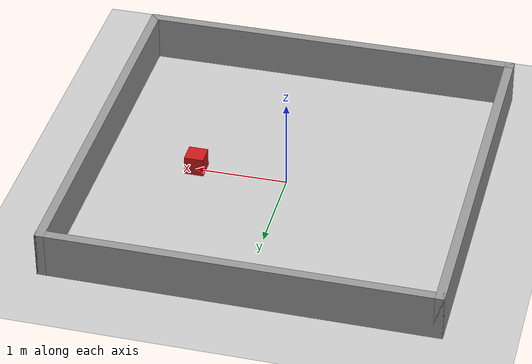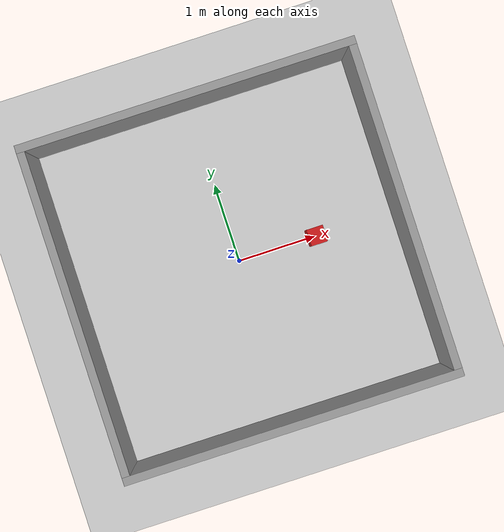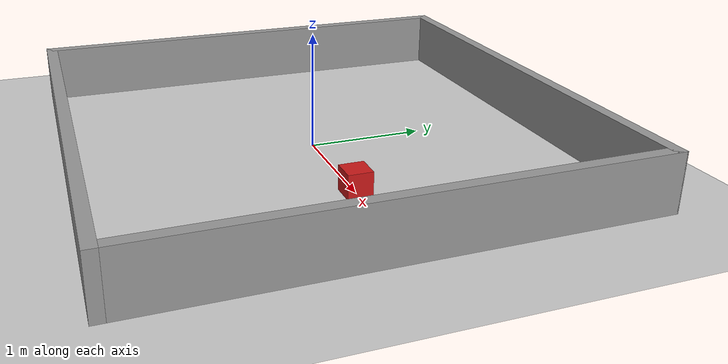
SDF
<?xml version="1.0" ?>
<sdf version="1.9">
  <world name="mppi_testing_world">

    <plugin filename="gz-sim-physics-system" name="gz::sim::systems::Physics"/>
    <plugin filename="gz-sim-user-commands-system" name="gz::sim::systems::UserCommands"/>
    <plugin filename="gz-sim-scene-broadcaster-system" name="gz::sim::systems::SceneBroadcaster"/>

    <plugin filename="gz-sim-sensors-system" name="gz::sim::systems::Sensors">
      <render_engine>ogre2</render_engine>
    </plugin>

    <light type="directional" name="sun">
      <cast_shadows>true</cast_shadows>
      <pose>0 0 10 0 0 0</pose>
      <diffuse>0.8 0.8 0.8 1</diffuse>
      <specular>0.2 0.2 0.2 1</specular>
      <direction>-0.5 0.1 -0.9</direction>
    </light>

    <model name="ground_plane">
      <static>true</static>
      <link name="link">
        <collision name="collision">
          <geometry><plane><normal>0 0 1</normal><size>10 10</size></plane></geometry>
        </collision>
        <visual name="visual">
          <geometry><plane><normal>0 0 1</normal><size>10 10</size></plane></geometry>
          <material>
            <ambient>0.8 0.8 0.8 1</ambient>
            <diffuse>0.8 0.8 0.8 1</diffuse>
          </material>
        </visual>
      </link>
    </model>

    <model name="wall_north">
      <static>true</static>
      <pose>0 2.05 0.25 0 0 0</pose>
      <link name="link">
        <collision name="collision"><geometry><box><size>4.2 0.1 0.5</size></box></geometry></collision>
        <visual name="visual"><geometry><box><size>4.2 0.1 0.5</size></box></geometry><material><ambient>0.6 0.6 0.6 1</ambient></material></visual>
      </link>
    </model>

    <model name="wall_south">
      <static>true</static>
      <pose>0 -2.05 0.25 0 0 0</pose>
      <link name="link">
        <collision name="collision"><geometry><box><size>4.2 0.1 0.5</size></box></geometry></collision>
        <visual name="visual"><geometry><box><size>4.2 0.1 0.5</size></box></geometry><material><ambient>0.6 0.6 0.6 1</ambient></material></visual>
      </link>
    </model>

    <model name="wall_east">
      <static>true</static>
      <pose>2.05 0 0.25 0 0 0</pose>
      <link name="link">
        <collision name="collision"><geometry><box><size>0.1 4.2 0.5</size></box></geometry></collision>
        <visual name="visual"><geometry><box><size>0.1 4.2 0.5</size></box></geometry><material><ambient>0.6 0.6 0.6 1</ambient></material></visual>
      </link>
    </model>

    <model name="wall_west">
      <static>true</static>
      <pose>-2.05 0 0.25 0 0 0</pose>
      <link name="link">
        <collision name="collision"><geometry><box><size>0.1 4.2 0.5</size></box></geometry></collision>
        <visual name="visual"><geometry><box><size>0.1 4.2 0.5</size></box></geometry><material><ambient>0.6 0.6 0.6 1</ambient></material></visual>
      </link>
    </model>

    <model name="target_box">
      <static>true</static>
      <pose>1.0 0.0 0.105 0 0 0</pose>
      <link name="link">
        <collision name="collision">
          <geometry><box><size>0.21 0.21 0.21</size></box></geometry>
        </collision>
        <visual name="visual">
          <geometry><box><size>0.21 0.21 0.21</size></box></geometry>
          <material>
            <ambient>0.8 0.1 0.1 1</ambient>
            <diffuse>0.8 0.1 0.1 1</diffuse>
          </material>
        </visual>
      </link>
    </model>

  </world>
</sdf>
